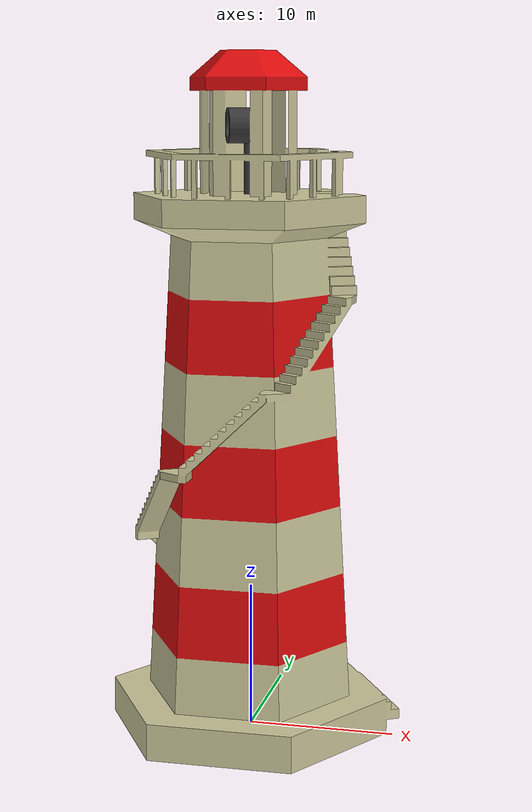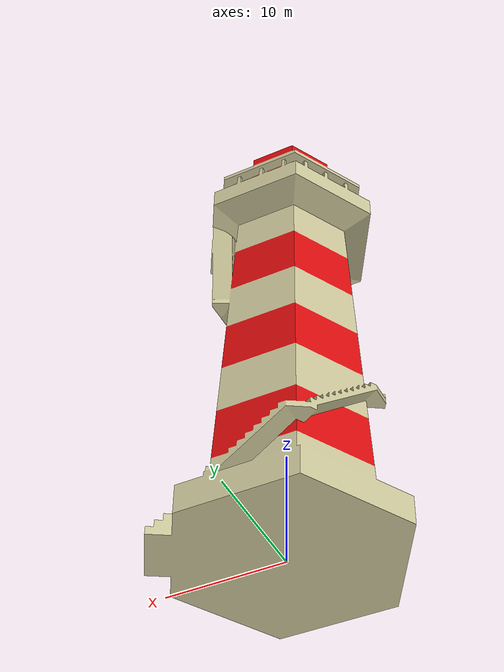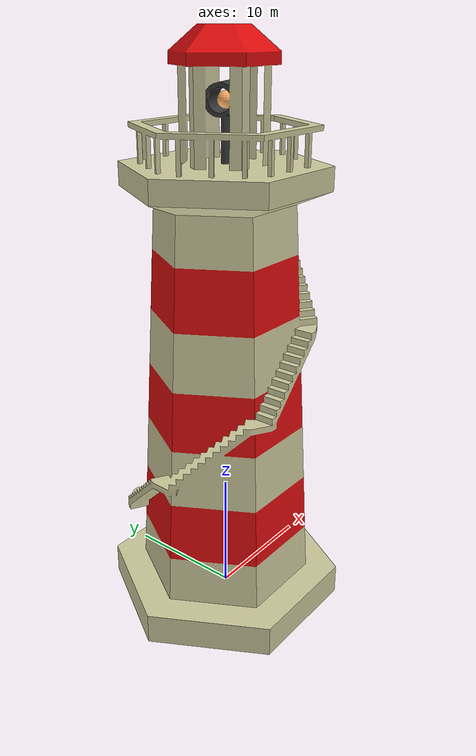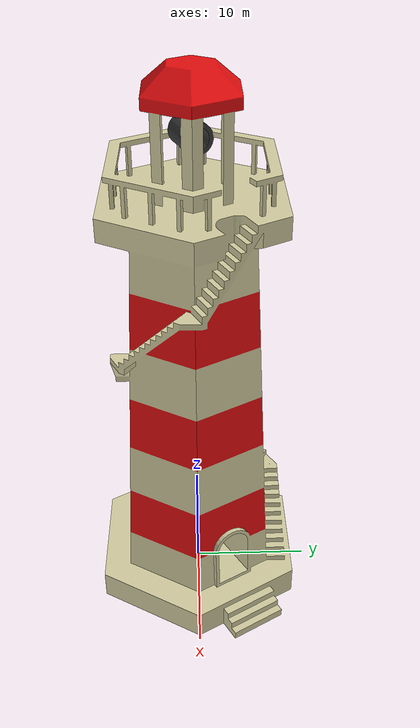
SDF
<?xml version="1.0"?>
<sdf version="1.5">
  <model name="aquabot_lighthouse">
    <static>true</static>
    <link name="link">
      <collision name="collision">
        <pose>0 0 25 0 0 0</pose>
        <geometry>
          <cylinder>
            <radius>12</radius>
            <length>50</length>
          </cylinder>
        </geometry>
      </collision>
      <visual name="visual">
        <pose>0.0 0.0 0.0 0 0 0 </pose>
        <geometry>
          <mesh>
            <scale>.2 .2 .2</scale>
            <uri>mesh/lighthouse.dae</uri>
          </mesh>
        </geometry>
      </visual>
    </link>
  </model>
</sdf>
